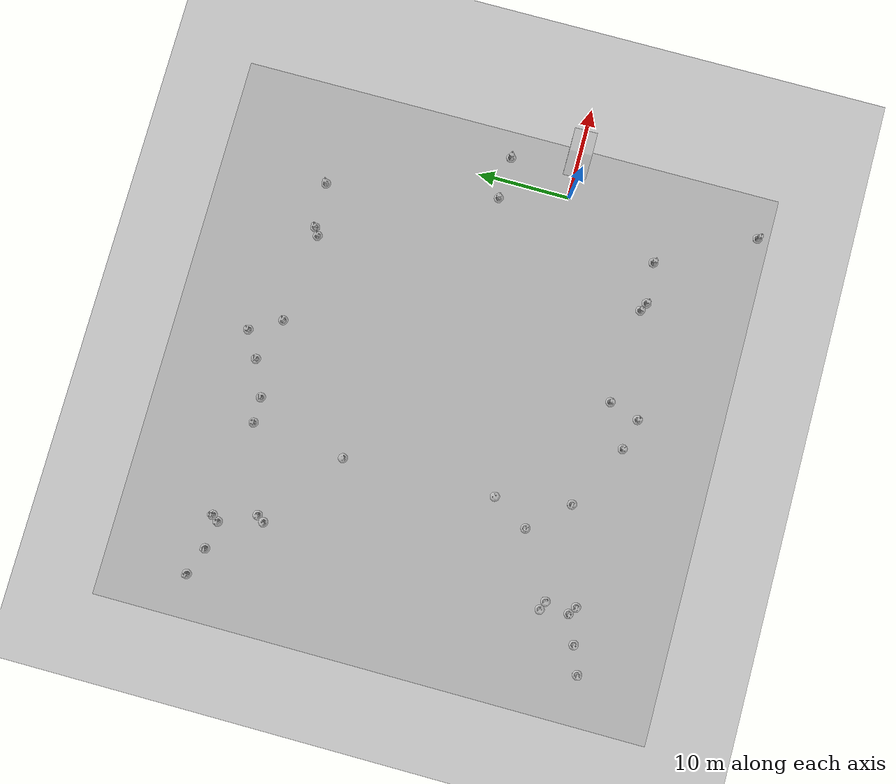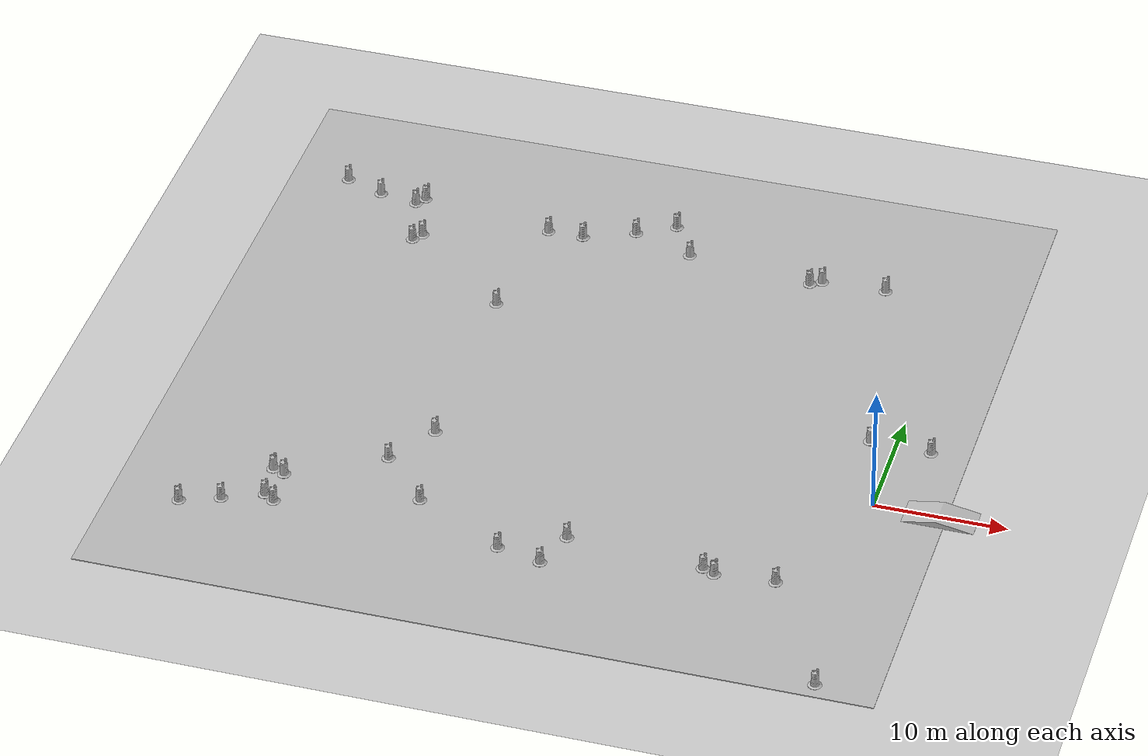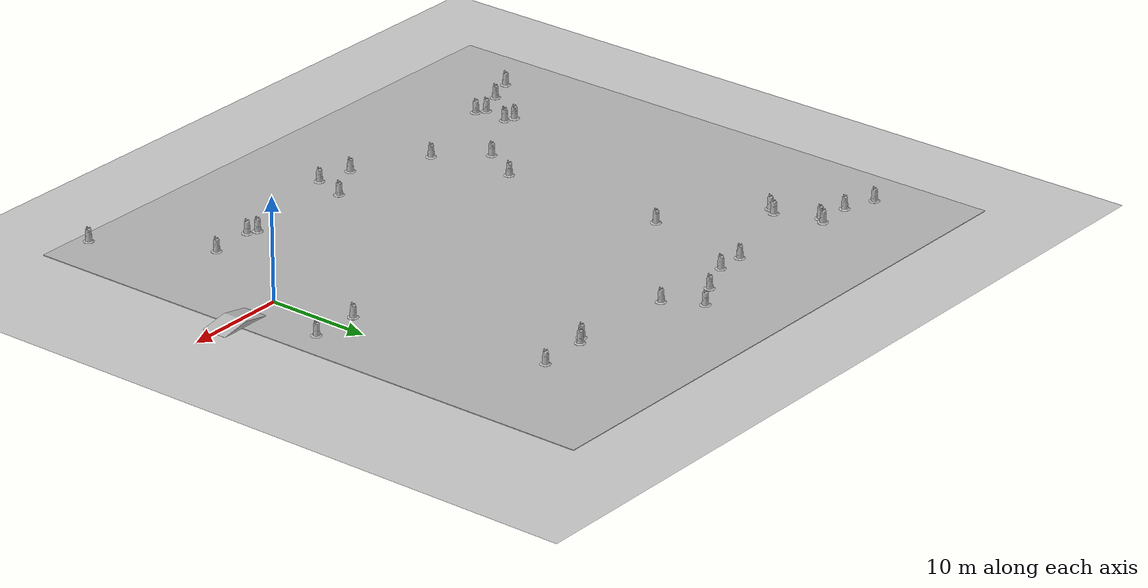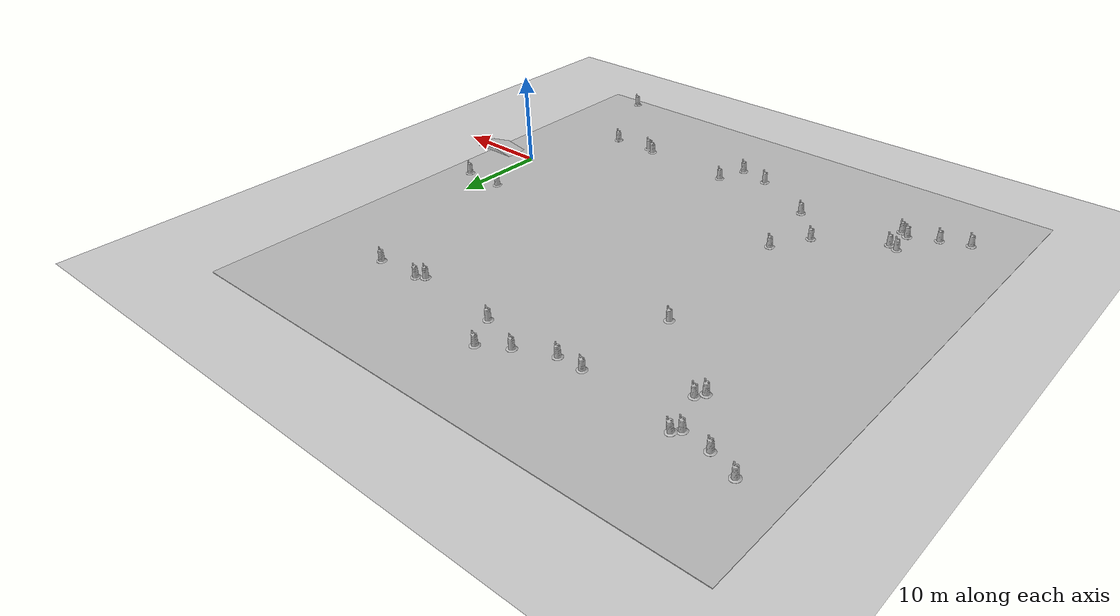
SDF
<sdf version="1.7">
 <world name="default">
  <light name="sun" type="directional">
   <pose>0 0 10 0 -0 0</pose>
   <diffuse>0.8 0.8 0.8 1</diffuse>
   <specular>0.2 0.2 0.2 1</specular>
   <attenuation>
    <range>1000</range>
    <constant>0.9</constant>
    <linear>0.01</linear>
    <quadratic>0.001</quadratic>
   </attenuation>
   <direction>-0.5 0.1 -0.9</direction>
   <spot><inner_angle>0</inner_angle><outer_angle>0</outer_angle><falloff>0</falloff></spot>
  </light>
  <model name="ground_plane">
   <static>1</static>
   <link name="link">
    <collision name="collision">
     <geometry><plane><normal>0 0 1</normal><size>100 100</size></plane></geometry>
     <surface>
      <contact><collide_bitmask>65535</collide_bitmask></contact>
      <friction><ode><mu>100</mu><mu2>50</mu2></ode></friction>
     </surface>
    </collision>
    <visual name="visual">
     <cast_shadows>0</cast_shadows>
     <geometry><plane><normal>0 0 1</normal><size>100 100</size></plane></geometry>
     <material>
      <script><uri>file://media/materials/scripts/gazebo.material</uri><name>Gazebo/Grey</name></script>
     </material>
    </visual>
   </link>
  </model>
  <gravity>0 0 -9.8</gravity>
  <magnetic_field>6e-06 2.3e-05 -4.2e-05</magnetic_field>
  <atmosphere type="adiabatic"/>
  <physics type="ode">
   <max_step_size>0.001</max_step_size>
   <real_time_factor>1</real_time_factor>
   <real_time_update_rate>1000</real_time_update_rate>
  </physics>
  <scene><ambient>0.4 0.4 0.4 1</ambient><background>0.7 0.7 0.7 1</background><shadows>1</shadows></scene>
  <spherical_coordinates>
   <surface_model>EARTH_WGS84</surface_model>
   <latitude_deg>0</latitude_deg>
   <longitude_deg>0</longitude_deg>
   <elevation>0</elevation>
   <heading_deg>0</heading_deg>
  </spherical_coordinates>
  <model name="igvc_track">
   <static>1</static>
   <link name="link">
    <collision name="collision"><geometry><box><size>58.9345 58.9345 0.0491121</size></box></geometry></collision>
    <visual name="visual">
     <cast_shadows>0</cast_shadows>
     <geometry><box><size>58.9345 58.9345 0.0491121</size></box></geometry>
     <material>
      <script>
       <uri>model://igvc_track/materials/scripts</uri>
       <uri>model://igvc_track/materials/textures</uri>
       <name>vrc/ground</name>
      </script>
     </material>
    </visual>
   </link>
   <link name="link2">
    <collision name="collision"><geometry><box><size>58.9345 58.9345 0.0491121</size></box></geometry></collision>
    <visual name="visual">
     <cast_shadows>0</cast_shadows>
     <geometry><box><size>58.9345 58.9345 0.0687569</size></box></geometry>
     <material>
      <script>
       <uri>model://igvc_track/materials/scripts</uri>
       <uri>model://igvc_track/materials/textures</uri>
       <name>vrc/track</name>
      </script>
     </material>
    </visual>
   </link>
   <pose>-23.9751 7.60239 0 0 -0 0</pose>
  </model>
  <model name="Construction Barrel">
   <link name="link">
    <inertial>
     <pose>0 0 0.4 0 -0 0</pose>
     <mass>500</mass>
     <inertia><ixx>51.2096</ixx><iyy>51.2096</iyy><izz>25</izz><ixy>0</ixy><ixz>0</ixz><iyz>0</iyz></inertia>
    </inertial>
    <collision name="collision">
     <geometry><mesh><uri>model://construction_barrel/meshes/construction_barrel.dae</uri></mesh></geometry>
    </collision>
    <visual name="visual">
     <geometry><mesh><uri>model://construction_barrel/meshes/construction_barrel.dae</uri></mesh></geometry>
    </visual>
   </link>
   <pose>0.974823 -20.6249 0.024555 -1e-06 -2e-06 6.3e-05</pose>
  </model>
  <model name="Construction Barrel_0">
   <link name="link">
    <inertial>
     <pose>0 0 0.4 0 -0 0</pose>
     <mass>500</mass>
     <inertia><ixx>51.2096</ixx><iyy>51.2096</iyy><izz>25</izz><ixy>0</ixy><ixz>0</ixz><iyz>0</iyz></inertia>
    </inertial>
    <collision name="collision">
     <geometry><mesh><uri>model://construction_barrel/meshes/construction_barrel.dae</uri></mesh></geometry>
    </collision>
    <visual name="visual">
     <geometry><mesh><uri>model://construction_barrel/meshes/construction_barrel.dae</uri></mesh></geometry>
    </visual>
   </link>
   <pose>-48.3035 -13.4046 0.024555 3e-06 -0 5.2e-05</pose>
  </model>
  <model name="ramp">
   <static>true</static>
   <link name="link">
    <collision name="collision">
     <geometry><mesh><uri>model://ramp/meshes/ramp.dae</uri><scale>1 1 1</scale></mesh></geometry>
    </collision>
    <visual name="visual">
     <geometry><mesh><uri>model://ramp/meshes/ramp.dae</uri><scale>1 1 1</scale></mesh></geometry>
    </visual>
   </link>
   <pose>5 0 0 0 0 0</pose>
  </model>
  <model name="Construction Barrel_1">
   <link name="link">
    <inertial>
     <pose>0 0 0.4 0 -0 0</pose>
     <mass>500</mass>
     <inertia><ixx>51.2096</ixx><iyy>51.2096</iyy><izz>25</izz><ixy>0</ixy><ixz>0</ixz><iyz>0</iyz></inertia>
    </inertial>
    <collision name="collision">
     <geometry><mesh><uri>model://construction_barrel/meshes/construction_barrel.dae</uri></mesh></geometry>
    </collision>
    <visual name="visual">
     <geometry><mesh><uri>model://construction_barrel/meshes/construction_barrel.dae</uri></mesh></geometry>
    </visual>
   </link>
   <pose>-45.4382 -12.3103 0.024555 3e-06 -0 5e-05</pose>
  </model>
  <model name="Construction Barrel_2">
   <link name="link">
    <inertial>
     <pose>0 0 0.4 0 -0 0</pose>
     <mass>500</mass>
     <inertia><ixx>51.2096</ixx><iyy>51.2096</iyy><izz>25</izz><ixy>0</ixy><ixz>0</ixz><iyz>0</iyz></inertia>
    </inertial>
    <collision name="collision">
     <geometry><mesh><uri>model://construction_barrel/meshes/construction_barrel.dae</uri></mesh></geometry>
    </collision>
    <visual name="visual">
     <geometry><mesh><uri>model://construction_barrel/meshes/construction_barrel.dae</uri></mesh></geometry>
    </visual>
   </link>
   <pose>-42.8898 -8.01652 0.024555 -1e-06 -2e-06 0.119675</pose>
  </model>
  <model name="Construction Barrel_3">
   <link name="link">
    <inertial>
     <pose>0 0 0.4 0 -0 0</pose>
     <mass>500</mass>
     <inertia><ixx>51.2096</ixx><iyy>51.2096</iyy><izz>25</izz><ixy>0</ixy><ixz>0</ixz><iyz>0</iyz></inertia>
    </inertial>
    <collision name="collision">
     <geometry><mesh><uri>model://construction_barrel/meshes/construction_barrel.dae</uri></mesh></geometry>
    </collision>
    <visual name="visual">
     <geometry><mesh><uri>model://construction_barrel/meshes/construction_barrel.dae</uri></mesh></geometry>
    </visual>
   </link>
   <pose>-41.9437 -8.39564 0.024555 -2e-06 -3e-06 -0.057972</pose>
  </model>
  <model name="Construction Barrel_4">
   <link name="link">
    <inertial>
     <pose>0 0 0.4 0 -0 0</pose>
     <mass>500</mass>
     <inertia><ixx>51.2096</ixx><iyy>51.2096</iyy><izz>25</izz><ixy>0</ixy><ixz>0</ixz><iyz>0</iyz></inertia>
    </inertial>
    <collision name="collision">
     <geometry><mesh><uri>model://construction_barrel/meshes/construction_barrel.dae</uri></mesh></geometry>
    </collision>
    <visual name="visual">
     <geometry><mesh><uri>model://construction_barrel/meshes/construction_barrel.dae</uri></mesh></geometry>
    </visual>
   </link>
   <pose>-41.691 -11.5922 0.024555 -1e-06 -3e-06 0.011178</pose>
  </model>
  <model name="Construction Barrel_5">
   <link name="link">
    <inertial>
     <pose>0 0 0.4 0 -0 0</pose>
     <mass>500</mass>
     <inertia><ixx>51.2096</ixx><iyy>51.2096</iyy><izz>25</izz><ixy>0</ixy><ixz>0</ixz><iyz>0</iyz></inertia>
    </inertial>
    <collision name="collision">
     <geometry><mesh><uri>model://construction_barrel/meshes/construction_barrel.dae</uri></mesh></geometry>
    </collision>
    <visual name="visual">
     <geometry><mesh><uri>model://construction_barrel/meshes/construction_barrel.dae</uri></mesh></geometry>
    </visual>
   </link>
   <pose>-42.5304 -11.0219 0.024555 4e-06 0 -0.032549</pose>
  </model>
  <model name="Construction Barrel_6">
   <link name="link">
    <inertial>
     <pose>0 0 0.4 0 -0 0</pose>
     <mass>500</mass>
     <inertia><ixx>51.2096</ixx><iyy>51.2096</iyy><izz>25</izz><ixy>0</ixy><ixz>0</ixz><iyz>0</iyz></inertia>
    </inertial>
    <collision name="collision">
     <geometry><mesh><uri>model://construction_barrel/meshes/construction_barrel.dae</uri></mesh></geometry>
    </collision>
    <visual name="visual">
     <geometry><mesh><uri>model://construction_barrel/meshes/construction_barrel.dae</uri></mesh></geometry>
    </visual>
   </link>
   <pose>-35.2345 -4.48527 0.024554 -1e-06 -5e-06 3.7e-05</pose>
  </model>
  <model name="Construction Barrel_7">
   <link name="link">
    <inertial>
     <pose>0 0 0.4 0 -0 0</pose>
     <mass>500</mass>
     <inertia><ixx>51.2096</ixx><iyy>51.2096</iyy><izz>25</izz><ixy>0</ixy><ixz>0</ixz><iyz>0</iyz></inertia>
    </inertial>
    <collision name="collision">
     <geometry><mesh><uri>model://construction_barrel/meshes/construction_barrel.dae</uri></mesh></geometry>
    </collision>
    <visual name="visual">
     <geometry><mesh><uri>model://construction_barrel/meshes/construction_barrel.dae</uri></mesh></geometry>
    </visual>
   </link>
   <pose>-31.5537 -8.55972 0.024555 4e-06 1e-06 3.7e-05</pose>
  </model>
  <model name="Construction Barrel_8">
   <link name="link">
    <inertial>
     <pose>0 0 0.4 0 -0 0</pose>
     <mass>500</mass>
     <inertia><ixx>51.2096</ixx><iyy>51.2096</iyy><izz>25</izz><ixy>0</ixy><ixz>0</ixz><iyz>0</iyz></inertia>
    </inertial>
    <collision name="collision">
     <geometry><mesh><uri>model://construction_barrel/meshes/construction_barrel.dae</uri></mesh></geometry>
    </collision>
    <visual name="visual">
     <geometry><mesh><uri>model://construction_barrel/meshes/construction_barrel.dae</uri></mesh></geometry>
    </visual>
   </link>
   <pose>-24.5724 -12.2286 0.024555 5e-06 -0 3.9e-05</pose>
  </model>
  <model name="Construction Barrel_9">
   <link name="link">
    <inertial>
     <pose>0 0 0.4 0 -0 0</pose>
     <mass>500</mass>
     <inertia><ixx>51.2096</ixx><iyy>51.2096</iyy><izz>25</izz><ixy>0</ixy><ixz>0</ixz><iyz>0</iyz></inertia>
    </inertial>
    <collision name="collision">
     <geometry><mesh><uri>model://construction_barrel/meshes/construction_barrel.dae</uri></mesh></geometry>
    </collision>
    <visual name="visual">
     <geometry><mesh><uri>model://construction_barrel/meshes/construction_barrel.dae</uri></mesh></geometry>
    </visual>
   </link>
   <pose>-21.196 -12.9953 0.024556 -1e-06 -1e-06 3.4e-05</pose>
  </model>
  <model name="Construction Barrel_10">
   <link name="link">
    <inertial>
     <pose>0 0 0.4 0 -0 0</pose>
     <mass>500</mass>
     <inertia><ixx>51.2096</ixx><iyy>51.2096</iyy><izz>25</izz><ixy>0</ixy><ixz>0</ixz><iyz>0</iyz></inertia>
    </inertial>
    <collision name="collision">
     <geometry><mesh><uri>model://construction_barrel/meshes/construction_barrel.dae</uri></mesh></geometry>
    </collision>
    <visual name="visual">
     <geometry><mesh><uri>model://construction_barrel/meshes/construction_barrel.dae</uri></mesh></geometry>
    </visual>
   </link>
   <pose>-20.1269 -9.76907 0.024555 -1e-06 -3e-06 3.1e-05</pose>
  </model>
  <model name="Construction Barrel_11">
   <link name="link">
    <inertial>
     <pose>0 0 0.4 0 -0 0</pose>
     <mass>500</mass>
     <inertia><ixx>51.2096</ixx><iyy>51.2096</iyy><izz>25</izz><ixy>0</ixy><ixz>0</ixz><iyz>0</iyz></inertia>
    </inertial>
    <collision name="collision">
     <geometry><mesh><uri>model://construction_barrel/meshes/construction_barrel.dae</uri></mesh></geometry>
    </collision>
    <visual name="visual">
     <geometry><mesh><uri>model://construction_barrel/meshes/construction_barrel.dae</uri></mesh></geometry>
    </visual>
   </link>
   <pose>-9.84684 -10.4314 0.024555 -2e-06 -4e-06 -0.013034</pose>
  </model>
  <model name="Construction Barrel_12">
   <link name="link">
    <inertial>
     <pose>0 0 0.4 0 -0 0</pose>
     <mass>500</mass>
     <inertia><ixx>51.2096</ixx><iyy>51.2096</iyy><izz>25</izz><ixy>0</ixy><ixz>0</ixz><iyz>0</iyz></inertia>
    </inertial>
    <collision name="collision">
     <geometry><mesh><uri>model://construction_barrel/meshes/construction_barrel.dae</uri></mesh></geometry>
    </collision>
    <visual name="visual">
     <geometry><mesh><uri>model://construction_barrel/meshes/construction_barrel.dae</uri></mesh></geometry>
    </visual>
   </link>
   <pose>-8.92911 -10.8648 0.024555 3e-06 0 0.045011</pose>
  </model>
  <model name="Construction Barrel_13">
   <link name="link">
    <inertial>
     <pose>0 0 0.4 0 -0 0</pose>
     <mass>500</mass>
     <inertia><ixx>51.2096</ixx><iyy>51.2096</iyy><izz>25</izz><ixy>0</ixy><ixz>0</ixz><iyz>0</iyz></inertia>
    </inertial>
    <collision name="collision">
     <geometry><mesh><uri>model://construction_barrel/meshes/construction_barrel.dae</uri></mesh></geometry>
    </collision>
    <visual name="visual">
     <geometry><mesh><uri>model://construction_barrel/meshes/construction_barrel.dae</uri></mesh></geometry>
    </visual>
   </link>
   <pose>-4.48184 -10.5071 0.024555 -1e-06 -2e-06 2.8e-05</pose>
  </model>
  <model name="Construction Barrel_14">
   <link name="link">
    <inertial>
     <pose>0 0 0.4 0 -0 0</pose>
     <mass>500</mass>
     <inertia><ixx>51.2096</ixx><iyy>51.2096</iyy><izz>25</izz><ixy>0</ixy><ixz>0</ixz><iyz>0</iyz></inertia>
    </inertial>
    <collision name="collision">
     <geometry><mesh><uri>model://construction_barrel/meshes/construction_barrel.dae</uri></mesh></geometry>
    </collision>
    <visual name="visual">
     <geometry><mesh><uri>model://construction_barrel/meshes/construction_barrel.dae</uri></mesh></geometry>
    </visual>
   </link>
   <pose>-1.98124 7.23316 0.024555 4e-06 1e-06 2.7e-05</pose>
  </model>
  <model name="Construction Barrel_15">
   <link name="link">
    <inertial>
     <pose>0 0 0.4 0 -0 0</pose>
     <mass>500</mass>
     <inertia><ixx>51.2096</ixx><iyy>51.2096</iyy><izz>25</izz><ixy>0</ixy><ixz>0</ixz><iyz>0</iyz></inertia>
    </inertial>
    <collision name="collision">
     <geometry><mesh><uri>model://construction_barrel/meshes/construction_barrel.dae</uri></mesh></geometry>
    </collision>
    <visual name="visual">
     <geometry><mesh><uri>model://construction_barrel/meshes/construction_barrel.dae</uri></mesh></geometry>
    </visual>
   </link>
   <pose>2.64893 7.07403 0.024555 5e-06 1e-06 2.5e-05</pose>
  </model>
  <model name="Construction Barrel_16">
   <link name="link">
    <inertial>
     <pose>0 0 0.4 0 -0 0</pose>
     <mass>500</mass>
     <inertia><ixx>51.2096</ixx><iyy>51.2096</iyy><izz>25</izz><ixy>0</ixy><ixz>0</ixz><iyz>0</iyz></inertia>
    </inertial>
    <collision name="collision">
     <geometry><mesh><uri>model://construction_barrel/meshes/construction_barrel.dae</uri></mesh></geometry>
    </collision>
    <visual name="visual">
     <geometry><mesh><uri>model://construction_barrel/meshes/construction_barrel.dae</uri></mesh></geometry>
    </visual>
   </link>
   <pose>-33.1737 15.8314 0.024555 -1e-06 -3e-06 2.1e-05</pose>
  </model>
  <model name="Construction Barrel_17">
   <link name="link">
    <inertial>
     <pose>0 0 0.4 0 -0 0</pose>
     <mass>500</mass>
     <inertia><ixx>51.2096</ixx><iyy>51.2096</iyy><izz>25</izz><ixy>0</ixy><ixz>0</ixz><iyz>0</iyz></inertia>
    </inertial>
    <collision name="collision">
     <geometry><mesh><uri>model://construction_barrel/meshes/construction_barrel.dae</uri></mesh></geometry>
    </collision>
    <visual name="visual">
     <geometry><mesh><uri>model://construction_barrel/meshes/construction_barrel.dae</uri></mesh></geometry>
    </visual>
   </link>
   <pose>-32.8855 -0.568073 0.024555 3e-06 -0 1.8e-05</pose>
  </model>
  <model name="Construction Barrel_18">
   <link name="link">
    <inertial>
     <pose>0 0 0.4 0 -0 0</pose>
     <mass>500</mass>
     <inertia><ixx>51.2096</ixx><iyy>51.2096</iyy><izz>25</izz><ixy>0</ixy><ixz>0</ixz><iyz>0</iyz></inertia>
    </inertial>
    <collision name="collision">
     <geometry><mesh><uri>model://construction_barrel/meshes/construction_barrel.dae</uri></mesh></geometry>
    </collision>
    <visual name="visual">
     <geometry><mesh><uri>model://construction_barrel/meshes/construction_barrel.dae</uri></mesh></geometry>
    </visual>
   </link>
   <pose>-48.9467 28.2223 0.024555 -1e-06 -3e-06 1.9e-05</pose>
  </model>
  <model name="Construction Barrel_19">
   <link name="link">
    <inertial>
     <pose>0 0 0.4 0 -0 0</pose>
     <mass>500</mass>
     <inertia><ixx>51.2096</ixx><iyy>51.2096</iyy><izz>25</izz><ixy>0</ixy><ixz>0</ixz><iyz>0</iyz></inertia>
    </inertial>
    <collision name="collision">
     <geometry><mesh><uri>model://construction_barrel/meshes/construction_barrel.dae</uri></mesh></geometry>
    </collision>
    <visual name="visual">
     <geometry><mesh><uri>model://construction_barrel/meshes/construction_barrel.dae</uri></mesh></geometry>
    </visual>
   </link>
   <pose>-45.9413 27.126 0.024555 -1e-06 -2e-06 1.6e-05</pose>
  </model>
  <model name="Construction Barrel_20">
   <link name="link">
    <inertial>
     <pose>0 0 0.4 0 -0 0</pose>
     <mass>500</mass>
     <inertia><ixx>51.2096</ixx><iyy>51.2096</iyy><izz>25</izz><ixy>0</ixy><ixz>0</ixz><iyz>0</iyz></inertia>
    </inertial>
    <collision name="collision">
     <geometry><mesh><uri>model://construction_barrel/meshes/construction_barrel.dae</uri></mesh></geometry>
    </collision>
    <visual name="visual">
     <geometry><mesh><uri>model://construction_barrel/meshes/construction_barrel.dae</uri></mesh></geometry>
    </visual>
   </link>
   <pose>-42.4056 27.3232 0.067719 -0.067889 0.052007 0.000427</pose>
  </model>
  <model name="Construction Barrel_21">
   <link name="link">
    <inertial>
     <pose>0 0 0.4 0 -0 0</pose>
     <mass>500</mass>
     <inertia><ixx>51.2096</ixx><iyy>51.2096</iyy><izz>25</izz><ixy>0</ixy><ixz>0</ixz><iyz>0</iyz></inertia>
    </inertial>
    <collision name="collision">
     <geometry><mesh><uri>model://construction_barrel/meshes/construction_barrel.dae</uri></mesh></geometry>
    </collision>
    <visual name="visual">
     <geometry><mesh><uri>model://construction_barrel/meshes/construction_barrel.dae</uri></mesh></geometry>
    </visual>
   </link>
   <pose>-42.9471 26.6284 0.024543 -1.1e-05 8e-06 0.017824</pose>
  </model>
  <model name="Construction Barrel_22">
   <link name="link">
    <inertial>
     <pose>0 0 0.4 0 -0 0</pose>
     <mass>500</mass>
     <inertia><ixx>51.2096</ixx><iyy>51.2096</iyy><izz>25</izz><ixy>0</ixy><ixz>0</ixz><iyz>0</iyz></inertia>
    </inertial>
    <collision name="collision">
     <geometry><mesh><uri>model://construction_barrel/meshes/construction_barrel.dae</uri></mesh></geometry>
    </collision>
    <visual name="visual">
     <geometry><mesh><uri>model://construction_barrel/meshes/construction_barrel.dae</uri></mesh></geometry>
    </visual>
   </link>
   <pose>-41.7675 22.0276 0.041977 0.027355 -0.020984 -0.032682</pose>
  </model>
  <model name="Construction Barrel_23">
   <link name="link">
    <inertial>
     <pose>0 0 0.4 0 -0 0</pose>
     <mass>500</mass>
     <inertia><ixx>51.2096</ixx><iyy>51.2096</iyy><izz>25</izz><ixy>0</ixy><ixz>0</ixz><iyz>0</iyz></inertia>
    </inertial>
    <collision name="collision">
     <geometry><mesh><uri>model://construction_barrel/meshes/construction_barrel.dae</uri></mesh></geometry>
    </collision>
    <visual name="visual">
     <geometry><mesh><uri>model://construction_barrel/meshes/construction_barrel.dae</uri></mesh></geometry>
    </visual>
   </link>
   <pose>-41.2078 22.8081 0.020973 0.006271 -0.005486 0.000693</pose>
  </model>
  <model name="Construction Barrel_24">
   <link name="link">
    <inertial>
     <pose>0 0 0.4 0 -0 0</pose>
     <mass>500</mass>
     <inertia><ixx>51.2096</ixx><iyy>51.2096</iyy><izz>25</izz><ixy>0</ixy><ixz>0</ixz><iyz>0</iyz></inertia>
    </inertial>
    <collision name="collision">
     <geometry><mesh><uri>model://construction_barrel/meshes/construction_barrel.dae</uri></mesh></geometry>
    </collision>
    <visual name="visual">
     <geometry><mesh><uri>model://construction_barrel/meshes/construction_barrel.dae</uri></mesh></geometry>
    </visual>
   </link>
   <pose>-32.0396 25.9101 0.024555 -1e-06 -4e-06 8e-06</pose>
  </model>
  <model name="Construction Barrel_25">
   <link name="link">
    <inertial>
     <pose>0 0 0.4 0 -0 0</pose>
     <mass>500</mass>
     <inertia><ixx>51.2096</ixx><iyy>51.2096</iyy><izz>25</izz><ixy>0</ixy><ixz>0</ixz><iyz>0</iyz></inertia>
    </inertial>
    <collision name="collision">
     <geometry><mesh><uri>model://construction_barrel/meshes/construction_barrel.dae</uri></mesh></geometry>
    </collision>
    <visual name="visual">
     <geometry><mesh><uri>model://construction_barrel/meshes/construction_barrel.dae</uri></mesh></geometry>
    </visual>
   </link>
   <pose>-29.286 25.9075 0.024555 3e-06 -0 7e-06</pose>
  </model>
  <model name="Construction Barrel_26">
   <link name="link">
    <inertial>
     <pose>0 0 0.4 0 -0 0</pose>
     <mass>500</mass>
     <inertia><ixx>51.2096</ixx><iyy>51.2096</iyy><izz>25</izz><ixy>0</ixy><ixz>0</ixz><iyz>0</iyz></inertia>
    </inertial>
    <collision name="collision">
     <geometry><mesh><uri>model://construction_barrel/meshes/construction_barrel.dae</uri></mesh></geometry>
    </collision>
    <visual name="visual">
     <geometry><mesh><uri>model://construction_barrel/meshes/construction_barrel.dae</uri></mesh></geometry>
    </visual>
   </link>
   <pose>-25.5004 27.5436 0.024556 -1e-06 -1e-06 8e-06</pose>
  </model>
  <model name="Construction Barrel_27">
   <link name="link">
    <inertial>
     <pose>0 0 0.4 0 -0 0</pose>
     <mass>500</mass>
     <inertia><ixx>51.2096</ixx><iyy>51.2096</iyy><izz>25</izz><ixy>0</ixy><ixz>0</ixz><iyz>0</iyz></inertia>
    </inertial>
    <collision name="collision">
     <geometry><mesh><uri>model://construction_barrel/meshes/construction_barrel.dae</uri></mesh></geometry>
    </collision>
    <visual name="visual">
     <geometry><mesh><uri>model://construction_barrel/meshes/construction_barrel.dae</uri></mesh></geometry>
    </visual>
   </link>
   <pose>-22.7119 29.1924 0.024555 -1e-06 -2e-06 7e-06</pose>
  </model>
  <model name="Construction Barrel_28">
   <link name="link">
    <inertial>
     <pose>0 0 0.4 0 -0 0</pose>
     <mass>500</mass>
     <inertia><ixx>51.2096</ixx><iyy>51.2096</iyy><izz>25</izz><ixy>0</ixy><ixz>0</ixz><iyz>0</iyz></inertia>
    </inertial>
    <collision name="collision">
     <geometry><mesh><uri>model://construction_barrel/meshes/construction_barrel.dae</uri></mesh></geometry>
    </collision>
    <visual name="visual">
     <geometry><mesh><uri>model://construction_barrel/meshes/construction_barrel.dae</uri></mesh></geometry>
    </visual>
   </link>
   <pose>-20.7787 25.8895 0.024555 2e-06 -0 3e-06</pose>
  </model>
  <model name="Construction Barrel_29">
   <link name="link">
    <inertial>
     <pose>0 0 0.4 0 -0 0</pose>
     <mass>500</mass>
     <inertia><ixx>51.2096</ixx><iyy>51.2096</iyy><izz>25</izz><ixy>0</ixy><ixz>0</ixz><iyz>0</iyz></inertia>
    </inertial>
    <collision name="collision">
     <geometry><mesh><uri>model://construction_barrel/meshes/construction_barrel.dae</uri></mesh></geometry>
    </collision>
    <visual name="visual">
     <geometry><mesh><uri>model://construction_barrel/meshes/construction_barrel.dae</uri></mesh></geometry>
    </visual>
   </link>
   <pose>-11.0548 24.8683 0.042854 0.022042 -0.028719 0.000457</pose>
  </model>
  <model name="Construction Barrel_30">
   <link name="link">
    <inertial>
     <pose>0 0 0.4 0 -0 0</pose>
     <mass>500</mass>
     <inertia><ixx>51.2096</ixx><iyy>51.2096</iyy><izz>25</izz><ixy>0</ixy><ixz>0</ixz><iyz>0</iyz></inertia>
    </inertial>
    <collision name="collision">
     <geometry><mesh><uri>model://construction_barrel/meshes/construction_barrel.dae</uri></mesh></geometry>
    </collision>
    <visual name="visual">
     <geometry><mesh><uri>model://construction_barrel/meshes/construction_barrel.dae</uri></mesh></geometry>
    </visual>
   </link>
   <pose>-10.2218 25.3723 0.024541 2.4e-05 -1.5e-05 0.007104</pose>
  </model>
  <model name="Construction Barrel_31">
   <link name="link">
    <inertial>
     <pose>0 0 0.4 0 -0 0</pose>
     <mass>500</mass>
     <inertia><ixx>51.2096</ixx><iyy>51.2096</iyy><izz>25</izz><ixy>0</ixy><ixz>0</ixz><iyz>0</iyz></inertia>
    </inertial>
    <collision name="collision">
     <geometry><mesh><uri>model://construction_barrel/meshes/construction_barrel.dae</uri></mesh></geometry>
    </collision>
    <visual name="visual">
     <geometry><mesh><uri>model://construction_barrel/meshes/construction_barrel.dae</uri></mesh></geometry>
    </visual>
   </link>
   <pose>-5.30959 25.5459 0.024556 1e-06 -0 -1e-06</pose>
  </model>
 </world>
</sdf>
